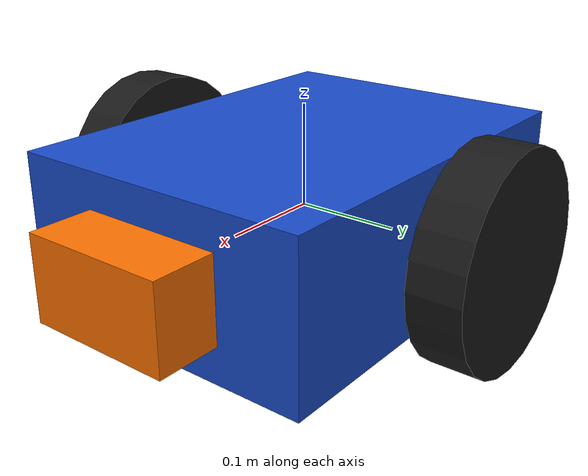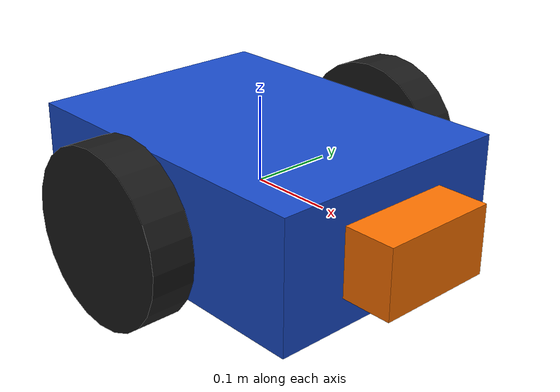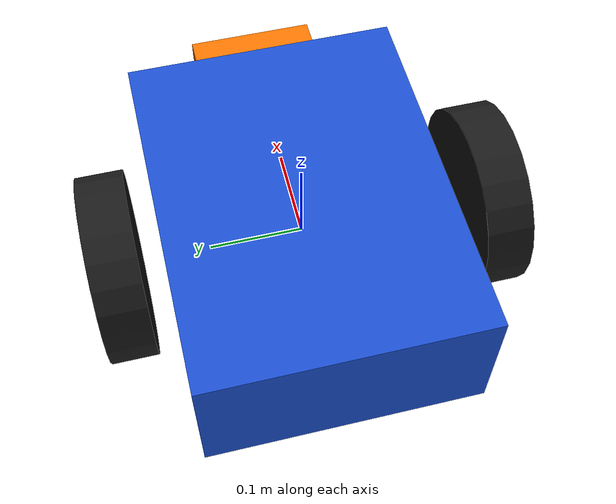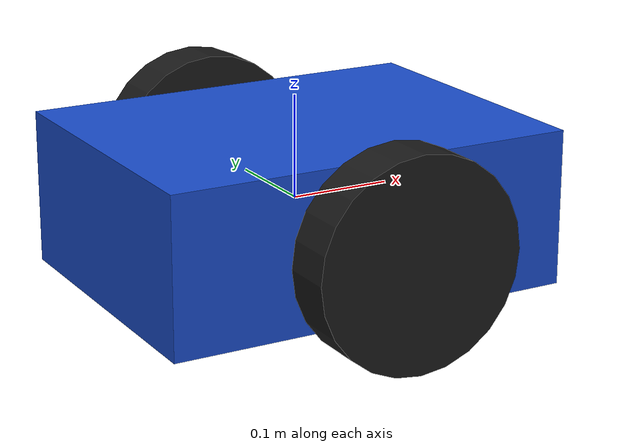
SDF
<?xml version="1.0" ?>
<sdf version="1.10">
  <model name="robot">

    <link name="base_link">
      <inertial>
        <mass>5.0</mass>
        <inertia><ixx>0.08</ixx><iyy>0.1</iyy><izz>0.1</izz>
                 <ixy>0</ixy><ixz>0</ixz><iyz>0</iyz></inertia>
      </inertial>
      <collision name="col"><geometry><box><size>0.4 0.3 0.15</size></box></geometry></collision>
      <!-- main body — blue -->
      <visual name="vis"><geometry><box><size>0.4 0.3 0.15</size></box></geometry>
        <material><ambient>0.1 0.3 0.8 1</ambient><diffuse>0.1 0.3 0.8 1</diffuse></material></visual>
      <!-- orange nose bump — marks the forward (+X) face -->
      <visual name="nose">
        <pose>0.23 0 0 0 0 0</pose>
        <geometry><box><size>0.06 0.14 0.08</size></box></geometry>
        <material><ambient>1.0 0.45 0.0 1</ambient><diffuse>1.0 0.45 0.0 1</diffuse></material>
      </visual>

      <!-- forward-facing camera at the front of the chassis -->
      <sensor name="camera" type="camera">
        <pose>0.2 0 0.05 0 0 0</pose>
        <always_on>1</always_on>
        <update_rate>30</update_rate>
        <topic>camera</topic>
        <camera>
          <horizontal_fov>2.0</horizontal_fov>
          <image><width>640</width><height>480</height><format>R8G8B8</format></image>
          <clip><near>0.05</near><far>15</far></clip>
        </camera>
      </sensor>
    </link>

    <!-- left wheel -->
    <link name="left_wheel">
      <pose>0 0.2 0 -1.5708 0 0</pose>
      <inertial><mass>0.5</mass>
        <inertia><ixx>0.001</ixx><iyy>0.001</iyy><izz>0.001</izz>
                 <ixy>0</ixy><ixz>0</ixz><iyz>0</iyz></inertia></inertial>
      <collision name="col"><geometry><cylinder><radius>0.1</radius><length>0.05</length></cylinder></geometry></collision>
      <visual name="vis"><geometry><cylinder><radius>0.1</radius><length>0.05</length></cylinder></geometry>
        <material><ambient>0.1 0.1 0.1 1</ambient><diffuse>0.1 0.1 0.1 1</diffuse></material></visual>
    </link>
    <!-- right wheel -->
    <link name="right_wheel">
      <pose>0 -0.2 0 -1.5708 0 0</pose>
      <inertial><mass>0.5</mass>
        <inertia><ixx>0.001</ixx><iyy>0.001</iyy><izz>0.001</izz>
                 <ixy>0</ixy><ixz>0</ixz><iyz>0</iyz></inertia></inertial>
      <collision name="col"><geometry><cylinder><radius>0.1</radius><length>0.05</length></cylinder></geometry></collision>
      <visual name="vis"><geometry><cylinder><radius>0.1</radius><length>0.05</length></cylinder></geometry>
        <material><ambient>0.1 0.1 0.1 1</ambient><diffuse>0.1 0.1 0.1 1</diffuse></material></visual>
    </link>
    <!-- front + rear low-friction casters: stable 4-point base, bottoms
         coplanar with the wheels (center z 0.04 world, radius 0.04). -->
    <link name="caster_front">
      <pose>0.15 0 -0.06 0 0 0</pose>
      <inertial><mass>0.1</mass>
        <inertia><ixx>0.0001</ixx><iyy>0.0001</iyy><izz>0.0001</izz>
                 <ixy>0</ixy><ixz>0</ixz><iyz>0</iyz></inertia></inertial>
      <collision name="col"><geometry><sphere><radius>0.04</radius></sphere></geometry>
        <surface><friction><ode><mu>0.0</mu><mu2>0.0</mu2></ode></friction></surface></collision>
      <visual name="vis"><geometry><sphere><radius>0.04</radius></sphere></geometry></visual>
    </link>
    <link name="caster_rear">
      <pose>-0.15 0 -0.06 0 0 0</pose>
      <inertial><mass>0.1</mass>
        <inertia><ixx>0.0001</ixx><iyy>0.0001</iyy><izz>0.0001</izz>
                 <ixy>0</ixy><ixz>0</ixz><iyz>0</iyz></inertia></inertial>
      <collision name="col"><geometry><sphere><radius>0.04</radius></sphere></geometry>
        <surface><friction><ode><mu>0.0</mu><mu2>0.0</mu2></ode></friction></surface></collision>
      <visual name="vis"><geometry><sphere><radius>0.04</radius></sphere></geometry></visual>
    </link>

    <joint name="left_wheel_joint" type="revolute">
      <parent>base_link</parent><child>left_wheel</child>
      <axis><xyz>0 0 1</xyz><limit><lower>-1e16</lower><upper>1e16</upper></limit></axis>
    </joint>
    <joint name="right_wheel_joint" type="revolute">
      <parent>base_link</parent><child>right_wheel</child>
      <axis><xyz>0 0 1</xyz><limit><lower>-1e16</lower><upper>1e16</upper></limit></axis>
    </joint>
    <joint name="caster_front_joint" type="ball">
      <parent>base_link</parent><child>caster_front</child>
    </joint>
    <joint name="caster_rear_joint" type="ball">
      <parent>base_link</parent><child>caster_rear</child>
    </joint>

    <!-- differential drive: subscribes /cmd_vel, publishes /odom -->
    <plugin filename="gz-sim-diff-drive-system" name="gz::sim::systems::DiffDrive">
      <left_joint>left_wheel_joint</left_joint>
      <right_joint>right_wheel_joint</right_joint>
      <wheel_separation>0.4</wheel_separation>
      <wheel_radius>0.1</wheel_radius>
      <odom_publish_frequency>30</odom_publish_frequency>
      <topic>cmd_vel</topic>
      <odom_topic>odom</odom_topic>
      <frame_id>odom</frame_id>
      <child_frame_id>base_link</child_frame_id>
    </plugin>

    <!-- GROUND TRUTH: publishes the robot's true world pose on /model/robot/pose
         (for verifying the filter estimate in RViz; not used by the filter). -->
    <plugin filename="gz-sim-pose-publisher-system" name="gz::sim::systems::PosePublisher">
      <publish_model_pose>true</publish_model_pose>
      <publish_link_pose>false</publish_link_pose>
      <publish_visual_pose>false</publish_visual_pose>
      <publish_collision_pose>false</publish_collision_pose>
      <publish_sensor_pose>false</publish_sensor_pose>
      <publish_nested_model_pose>false</publish_nested_model_pose>
      <use_pose_vector_msg>false</use_pose_vector_msg>
      <update_frequency>30</update_frequency>
    </plugin>

  </model>
</sdf>
